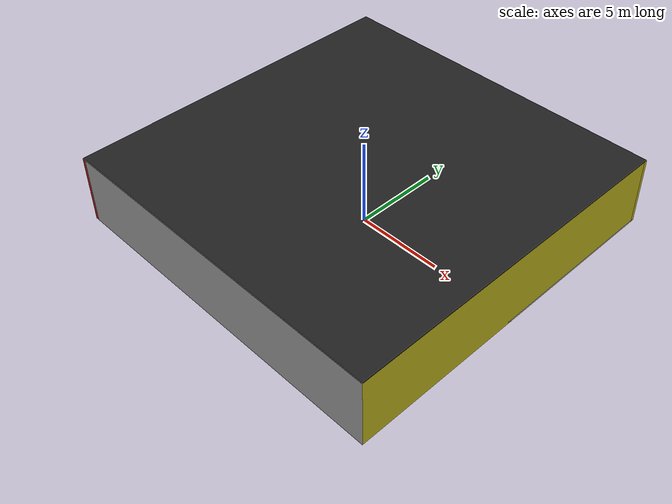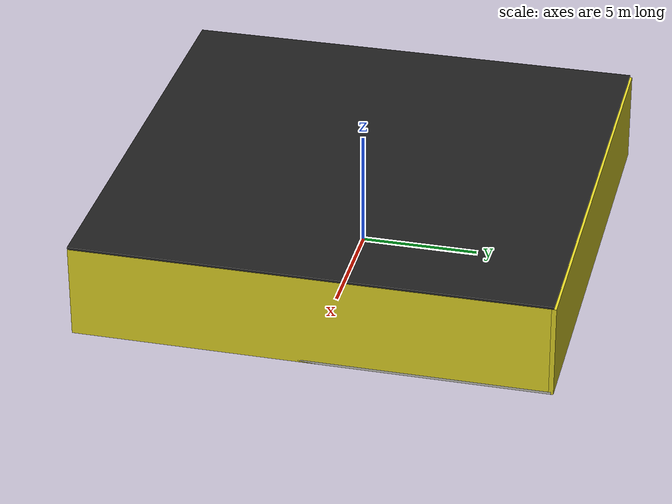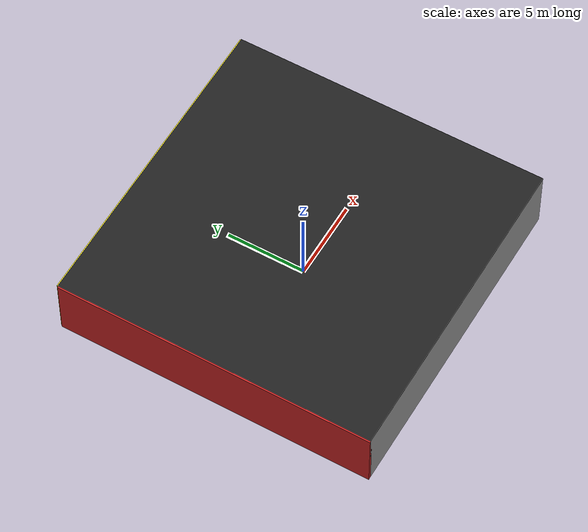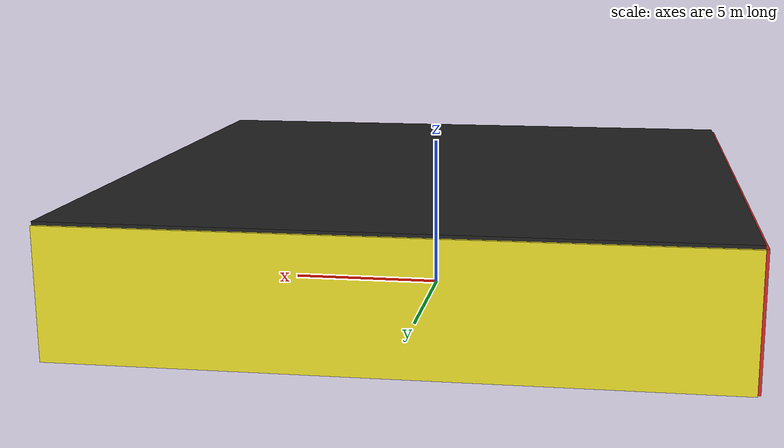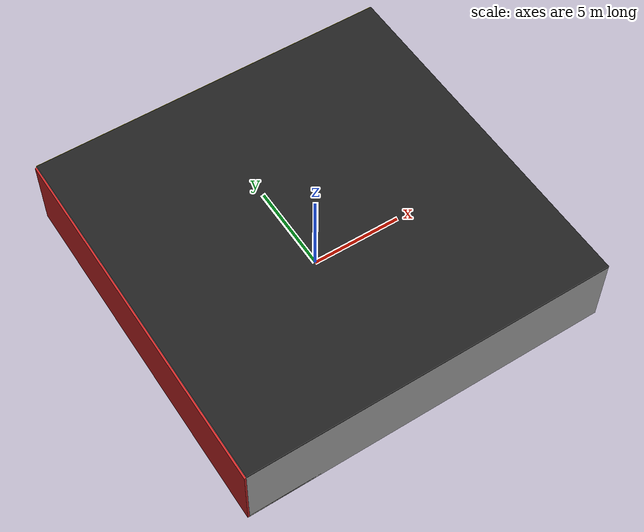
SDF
<sdf version="1.4">
 <world name="default">
  <physics type="ode">
   <max_step_size>0.001</max_step_size>
   <real_time_factor>1</real_time_factor>
   <real_time_update_rate>1000</real_time_update_rate>
   <gravity>0 0 -9.8</gravity>
  </physics>
  <scene><ambient>0.4 0.4 0.4 1</ambient><background>0.7 0.7 0.7 1</background><shadows>1</shadows></scene>
  <model name="Surrounding">
   <static>1</static>
   <link name="Ceiling">
    <collision name="Ceiling_Collision"><geometry><box><size>20 20 0.1</size></box></geometry></collision>
    <visual name="Ceiling_Visual">
     <geometry><box><size>20 20 0.1</size></box></geometry>
     <material>
      <script><uri>file://media/materials/scripts/gazebo.material</uri><name>Gazebo/Black</name></script>
     </material>
    </visual>
    <pose>0 0 4.05 0 0 0</pose>
   </link>
   <link name="Wall_South">
    <collision name="Wall_South_Collision">
     <geometry><box><size>20 0 4</size></box></geometry>
     <pose>0 0 2 0 -0 0</pose>
    </collision>
    <visual name="Wall_South_Visual">
     <pose>0 0 2 0 -0 0</pose>
     <geometry><box><size>20 0 4</size></box></geometry>
     <material>
      <script><uri>file://media/materials/scripts/gazebo.material</uri><name>Gazebo/CloudySky</name></script>
     </material>
    </visual>
    <velocity_decay><linear>0</linear><angular>0</angular></velocity_decay>
    <pose>0 -10 0 0 -0 0</pose>
   </link>
   <link name="Wall_East">
    <collision name="Wall_21_Collision">
     <geometry><box><size>20 0 4</size></box></geometry>
     <pose>0 0 2 0 -0 0</pose>
    </collision>
    <visual name="Wall_21_Visual">
     <pose>0 0 2 0 -0 0</pose>
     <geometry><box><size>20 0 4</size></box></geometry>
     <material>
      <script><uri>file://media/materials/scripts/gazebo.material</uri><name>Gazebo/Yellow</name></script>
     </material>
    </visual>
    <velocity_decay><linear>0</linear><angular>0</angular></velocity_decay>
    <pose>10 0 0 0 -0 1.5708</pose>
   </link>
   <link name="Wall_North">
    <collision name="Wall_22_Collision">
     <geometry><box><size>20 0.2 4</size></box></geometry>
     <pose>0 0 2 0 -0 0</pose>
    </collision>
    <visual name="Wall_22_Visual">
     <pose>0 0 2 0 -0 0</pose>
     <geometry><box><size>20 0.2 4</size></box></geometry>
     <material>
      <script><uri>file://media/materials/scripts/gazebo.material</uri><name>Gazebo/YellowGlow</name></script>
     </material>
    </visual>
    <velocity_decay><linear>0</linear><angular>0</angular></velocity_decay>
    <pose>0 10 0 0 -0 0</pose>
   </link>
   <link name="Wall_West">
    <collision name="Wall_23_Collision">
     <geometry><box><size>20 0.2 4</size></box></geometry>
     <pose>0 0 2 0 -0 0</pose>
    </collision>
    <visual name="Wall_23_Visual">
     <pose>0 0 2 0 -0 0</pose>
     <geometry><box><size>20 0.2 4</size></box></geometry>
     <material>
      <script><uri>file://media/materials/scripts/gazebo.material</uri><name>Gazebo/RedBright</name></script>
     </material>
    </visual>
    <velocity_decay><linear>0</linear><angular>0</angular></velocity_decay>
    <pose>-10 0 0 0 0 -1.5708</pose>
   </link>
   <link name="Ground_link">
    <collision name="collision">
     <pose>0 0 .05 0 -0 0</pose>
     <geometry><box><size>20 20 0.1</size></box></geometry>
    </collision>
    <visual name="visual">
     <pose>0 0 .05 0 -0 0</pose>
     <geometry><box><size>20 20 0.1</size></box></geometry>
     <material>
      <script><uri>file://media/materials/scripts/gazebo.material</uri><name>Gazebo/PaintedWall</name></script>
     </material>
    </visual>
   </link>
   <static>1</static>
  </model>
  <spherical_coordinates>
   <surface_model>EARTH_WGS84</surface_model>
   <latitude_deg>0</latitude_deg>
   <longitude_deg>0</longitude_deg>
   <elevation>0</elevation>
   <heading_deg>0</heading_deg>
  </spherical_coordinates>
  <light name="lightball_0" type="diffuse">
   <diffuse>0.8 0.8 0.8 1</diffuse>
   <specular>0.2 0.2 0.2 1</specular>
   <attenuation>
    <range>100</range>
    <constant>0.7</constant>
    <linear>0.01</linear>
    <quadratic>0.001</quadratic>
   </attenuation>
   <direction>-0.5 0.1 -0.9</direction>
   <pose>6.54500980701 -5.68002500514 0.539513729938 0 0 0</pose>
  </light>
  <light name="lightball_1" type="diffuse">
   <diffuse>0.8 0.8 0.8 1</diffuse>
   <specular>0.2 0.2 0.2 1</specular>
   <attenuation>
    <range>100</range>
    <constant>0.7</constant>
    <linear>0.01</linear>
    <quadratic>0.001</quadratic>
   </attenuation>
   <direction>-0.5 0.1 -0.9</direction>
   <pose>-4.16543261119 -4.33138146172 3.68240763202 0 0 0</pose>
  </light>
  <light name="lightball_2" type="diffuse">
   <diffuse>0.8 0.8 0.8 1</diffuse>
   <specular>0.2 0.2 0.2 1</specular>
   <attenuation>
    <range>100</range>
    <constant>0.7</constant>
    <linear>0.01</linear>
    <quadratic>0.001</quadratic>
   </attenuation>
   <direction>-0.5 0.1 -0.9</direction>
   <pose>9.56260281658 -2.98561658876 2.55068515723 0 0 0</pose>
  </light>
  <light name="lightball_3" type="diffuse">
   <diffuse>0.8 0.8 0.8 1</diffuse>
   <specular>0.2 0.2 0.2 1</specular>
   <attenuation>
    <range>100</range>
    <constant>0.7</constant>
    <linear>0.01</linear>
    <quadratic>0.001</quadratic>
   </attenuation>
   <direction>-0.5 0.1 -0.9</direction>
   <pose>-6.7567940091 3.0663536697 2.49005639264 0 0 0</pose>
  </light>
  <light name="lightball_4" type="diffuse">
   <diffuse>0.8 0.8 0.8 1</diffuse>
   <specular>0.2 0.2 0.2 1</specular>
   <attenuation>
    <range>100</range>
    <constant>0.7</constant>
    <linear>0.01</linear>
    <quadratic>0.001</quadratic>
   </attenuation>
   <direction>-0.5 0.1 -0.9</direction>
   <pose>-1.58657636507 -4.69869178792 1.17816773713 0 0 0</pose>
  </light>
  <light name="lightball_5" type="diffuse">
   <diffuse>0.8 0.8 0.8 1</diffuse>
   <specular>0.2 0.2 0.2 1</specular>
   <attenuation>
    <range>100</range>
    <constant>0.7</constant>
    <linear>0.01</linear>
    <quadratic>0.001</quadratic>
   </attenuation>
   <direction>-0.5 0.1 -0.9</direction>
   <pose>-4.64443246156 7.89985970977 1.84496874622 0 0 0</pose>
  </light>
  <light name="lightball_6" type="diffuse">
   <diffuse>0.8 0.8 0.8 1</diffuse>
   <specular>0.2 0.2 0.2 1</specular>
   <attenuation>
    <range>100</range>
    <constant>0.7</constant>
    <linear>0.01</linear>
    <quadratic>0.001</quadratic>
   </attenuation>
   <direction>-0.5 0.1 -0.9</direction>
   <pose>0.898721623014 5.75623782489 2.55741040208 0 0 0</pose>
  </light>
  <light name="lightball_7" type="diffuse">
   <diffuse>0.8 0.8 0.8 1</diffuse>
   <specular>0.2 0.2 0.2 1</specular>
   <attenuation>
    <range>100</range>
    <constant>0.7</constant>
    <linear>0.01</linear>
    <quadratic>0.001</quadratic>
   </attenuation>
   <direction>-0.5 0.1 -0.9</direction>
   <pose>-0.651999854331 9.9949686436 0.991477148179 0 0 0</pose>
  </light>
  <light name="lightball_8" type="diffuse">
   <diffuse>0.8 0.8 0.8 1</diffuse>
   <specular>0.2 0.2 0.2 1</specular>
   <attenuation>
    <range>100</range>
    <constant>0.7</constant>
    <linear>0.01</linear>
    <quadratic>0.001</quadratic>
   </attenuation>
   <direction>-0.5 0.1 -0.9</direction>
   <pose>-6.72874251386 -9.10633338174 0.784951174955 0 0 0</pose>
  </light>
  <light name="lightball_9" type="diffuse">
   <diffuse>0.8 0.8 0.8 1</diffuse>
   <specular>0.2 0.2 0.2 1</specular>
   <attenuation>
    <range>100</range>
    <constant>0.7</constant>
    <linear>0.01</linear>
    <quadratic>0.001</quadratic>
   </attenuation>
   <direction>-0.5 0.1 -0.9</direction>
   <pose>-5.98505777147 -5.27036749405 3.70924110632 0 0 0</pose>
  </light>
  <light name="lightball_10" type="diffuse">
   <diffuse>0.8 0.8 0.8 1</diffuse>
   <specular>0.2 0.2 0.2 1</specular>
   <attenuation>
    <range>100</range>
    <constant>0.7</constant>
    <linear>0.01</linear>
    <quadratic>0.001</quadratic>
   </attenuation>
   <direction>-0.5 0.1 -0.9</direction>
   <pose>-4.74416313317 -3.73205048844 2.91880550202 0 0 0</pose>
  </light>
  <light name="lightball_11" type="diffuse">
   <diffuse>0.8 0.8 0.8 1</diffuse>
   <specular>0.2 0.2 0.2 1</specular>
   <attenuation>
    <range>100</range>
    <constant>0.7</constant>
    <linear>0.01</linear>
    <quadratic>0.001</quadratic>
   </attenuation>
   <direction>-0.5 0.1 -0.9</direction>
   <pose>-6.53211106142 -6.59770972426 2.96269598969 0 0 0</pose>
  </light>
  <include><uri>model://cabinet</uri><pose>-1.87816091611 -4.55841153299 0 0 0 1.13287802277</pose></include>
  <include>
   <uri>model://robocup_3Dsim_goal</uri>
   <pose>1.78235217648 -1.96626337409 0 0 0 0.0367518549464</pose>
  </include>
  <include>
   <uri>model://textured_shapes</uri>
   <pose>0.960671044867 2.04905269838 0 0 0 2.88838759682</pose>
  </include>
  <include>
   <uri>model://robocup_3Dsim_goal</uri>
   <pose>4.60030195941 -6.90970755645 0 0 0 1.00744657296</pose>
  </include>
 </world>
</sdf>

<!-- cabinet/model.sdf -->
<sdf version="1.5">
  <model name="cabinet">
    <static>true</static>
    <link name="cabinet_bottom_plate">
      <inertial>
        <pose>0 0 -1 0 0 0</pose>
        <inertia>
          <ixx>2.050000</ixx>
          <ixy>0</ixy>
          <ixz>0</ixz>
          <iyy>2.050000</iyy>
          <iyz>0</iyz>
          <izz>2.050000</izz>
        </inertia>
        <mass>25.000000</mass>
      </inertial>
      <collision name="cabinet_bottom_plate_geom">
        <pose>0 0 0.010000 0 0 0</pose>
        <geometry>
          <box>
            <size>0.450000 0.450000 0.020000</size>
          </box>
        </geometry>
      </collision>
      <visual name="cabinet_bottom_plate_geom_visual">
        <pose>0 0 0.010000 0 0 0</pose>
        <geometry>
          <box>
            <size>0.450000 0.450000 0.020000</size>
          </box>
        </geometry>
        <material>
          <script>
            <uri>model://media/materials/scripts/gazebo.material</uri>
            <name>Gazebo/Wood</name>
          </script>
        </material>
      </visual>
      <collision name="cabinet_bottom_plate_geom_cabinet_back_plate">
        <pose>0.235000 0 0.510000 0 0 0</pose>
        <geometry>
          <box>
            <size>0.020000 0.450000 1.020000</size>
          </box>
        </geometry>
      </collision>
      <visual name="cabinet_bottom_plate_geom_cabinet_back_plate_visual">
        <pose>0.235000 0 0.510000 0 0 0</pose>
        <geometry>
          <box>
            <size>0.020000 0.450000 1.020000</size>
          </box>
        </geometry>
        <material>
          <script>
            <uri>model://media/materials/scripts/gazebo.material</uri>
            <name>Gazebo/Wood</name>
          </script>
        </material>
      </visual>
      <collision name="cabinet_bottom_plate_geom_cabinet_left_plate">
        <pose>0 0.235000 0.510000 0 0 0</pose>
        <geometry>
          <box>
            <size>0.450000 0.020000 1.020000</size>
          </box>
        </geometry>
      </collision>
      <visual name="cabinet_bottom_plate_geom_cabinet_left_plate_visual">
        <pose>0 0.235000 0.510000 0 0 0</pose>
        <geometry>
          <box>
            <size>0.450000 0.020000 1.020000</size>
          </box>
        </geometry>
        <material>
          <script>
            <uri>model://media/materials/scripts/gazebo.material</uri>
            <name>Gazebo/Wood</name>
          </script>
        </material>
      </visual>
      <collision name="cabinet_bottom_plate_geom_cabinet_middle_plate">
        <pose>0 0 0.510000 0 0 0</pose>
        <geometry>
          <box>
            <size>0.450000 0.450000 0.020000</size>
          </box>
        </geometry>
      </collision>
      <visual name="cabinet_bottom_plate_geom_cabinet_middle_plate_visual">
        <pose>0 0 0.510000 0 0 0</pose>
        <geometry>
          <box>
            <size>0.450000 0.450000 0.020000</size>
          </box>
        </geometry>
        <material>
          <script>
            <uri>model://media/materials/scripts/gazebo.material</uri>
            <name>Gazebo/Wood</name>
          </script>
        </material>
      </visual>
      <collision name="cabinet_bottom_plate_geom_cabinet_right_plate">
        <pose>0 -0.235000 0.510000 0 0 0</pose>
        <geometry>
          <box>
            <size>0.450000 0.020000 1.020000</size>
          </box>
        </geometry>
      </collision>
      <visual name="cabinet_bottom_plate_geom_cabinet_right_plate_visual">
        <pose>0 -0.235000 0.510000 0 0 0</pose>
        <geometry>
          <box>
            <size>0.450000 0.020000 1.020000</size>
          </box>
        </geometry>
        <material>
          <script>
            <uri>model://media/materials/scripts/gazebo.material</uri>
            <name>Gazebo/Wood</name>
          </script>
        </material>
      </visual>
      <collision name="cabinet_bottom_plate_geom_cabinet_top_plate">
        <pose>0 0 1.010000 0 0 0</pose>
        <geometry>
          <box>
            <size>0.450000 0.450000 0.020000</size>
          </box>
        </geometry>
      </collision>
      <visual name="cabinet_bottom_plate_geom_cabinet_top_plate_visual">
        <pose>0 0 1.010000 0 0 0</pose>
        <geometry>
          <box>
            <size>0.450000 0.450000 0.020000</size>
          </box>
        </geometry>
        <material>
          <script>
            <uri>model://media/materials/scripts/gazebo.material</uri>
            <name>Gazebo/Wood</name>
          </script>
        </material>
      </visual>
    </link>
  </model>
</sdf>

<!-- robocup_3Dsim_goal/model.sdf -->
<sdf version="1.5">
  <model name="robocup_3d_goal">
    <static>true</static>
    <link name="left_post">
      <pose>0 1.05 0.45 0 0 0</pose>
      <collision name="collision">
        <geometry>
          <cylinder>
            <radius>0.05</radius>
            <length>0.9</length>
          </cylinder>
        </geometry>
      </collision>
      <visual name="visual">
        <geometry>
          <cylinder>
            <radius>0.05</radius>
            <length>0.9</length>
          </cylinder>
        </geometry>
        <material>
          <script>
            <uri>file://media/materials/scripts/gazebo.material</uri>
            <name>Gazebo/ZincYellow</name>
          </script>
        </material>
      </visual>
    </link>
    <link name="left_support_horiz_lower">
      <pose>0.30 1.05 0.01 0 0 0</pose>
      <collision name="collision">
        <geometry>
          <box>
            <size>0.50 0.02 0.02</size>
          </box>
        </geometry>
      </collision>
      <visual name="visual">
        <geometry>
          <box>
            <size>0.50 0.02 0.02</size>
          </box>
        </geometry>
        <material>
          <script>
            <uri>file://media/materials/scripts/gazebo.material</uri>
            <name>Gazebo/White</name>
          </script>
        </material>
      </visual>
    </link>
    <link name="left_support_horiz_upper">
      <pose>0.30 1.05 0.79 0 0 0</pose>
      <collision name="collision">
        <geometry>
          <box>
            <size>0.50 0.02 0.02</size>
          </box>
        </geometry>
      </collision>
      <visual name="visual">
        <geometry>
          <box>
            <size>0.50 0.02 0.02</size>
          </box>
        </geometry>
        <material>
          <script>
            <uri>file://media/materials/scripts/gazebo.material</uri>
            <name>Gazebo/White</name>
          </script>
        </material>
      </visual>
    </link>
    <link name="left_support_vertical">
      <pose>0.56 1.05 0.4 0 1.5708 0</pose>
      <collision name="collision">
        <geometry>
          <box>
            <size>0.80 0.02 0.02</size>
          </box>
        </geometry>
      </collision>
      <visual name="visual">
        <geometry>
          <box>
            <size>0.80 0.02 0.02</size>
          </box>
        </geometry>
        <material>
          <script>
            <uri>file://media/materials/scripts/gazebo.material</uri>
            <name>Gazebo/White</name>
          </script>
        </material>
      </visual>
    </link>
    <link name="right_support_horiz_lower">
      <pose>0.30 -1.05 0.01 0 0 0</pose>
      <collision name="collision">
        <geometry>
          <box>
            <size>0.50 0.02 0.02</size>
          </box>
        </geometry>
      </collision>
      <visual name="visual">
        <geometry>
          <box>
            <size>0.50 0.02 0.02</size>
          </box>
        </geometry>
        <material>
          <script>
            <uri>file://media/materials/scripts/gazebo.material</uri>
            <name>Gazebo/White</name>
          </script>
        </material>
      </visual>
    </link>
    <link name="right_support_horiz_upper">
      <pose>0.30 -1.05 0.79 0 0 0</pose>
      <collision name="collision">
        <geometry>
          <box>
            <size>0.50 0.02 0.02</size>
          </box>
        </geometry>
      </collision>
      <visual name="visual">
        <geometry>
          <box>
            <size>0.50 0.02 0.02</size>
          </box>
        </geometry>
        <material>
          <script>
            <uri>file://media/materials/scripts/gazebo.material</uri>
            <name>Gazebo/White</name>
          </script>
        </material>
      </visual>
    </link>
    <link name="right_support_vertical">
      <pose>0.56 -1.05 0.4 0 1.5708 0</pose>
      <collision name="collision">
        <geometry>
          <box>
            <size>0.80 0.02 0.02</size>
          </box>
        </geometry>
      </collision>
      <visual name="visual">
        <geometry>
          <box>
            <size>0.80 0.02 0.02</size>
          </box>
        </geometry>
        <material>
          <script>
            <uri>file://media/materials/scripts/gazebo.material</uri>
            <name>Gazebo/White</name>
          </script>
        </material>
      </visual>
    </link>
    <link name="center_support_horiz_lower">
      <pose>0.56 0 0.01 0 1.5708 0</pose>
      <collision name="collision">
        <geometry>
          <box>
            <size>0.02 2.08 0.02</size>
          </box>
        </geometry>
      </collision>
      <visual name="visual">
        <geometry>
          <box>
            <size>0.02 2.08 0.02</size>
          </box>
        </geometry>
        <material>
          <script>
            <uri>file://media/materials/scripts/gazebo.material</uri>
            <name>Gazebo/White</name>
          </script>
        </material>
      </visual>
    </link>
    <link name="center_support_horiz_upper">
      <pose>0.56 0 0.79 0 1.5708 0</pose>
      <collision name="collision">
        <geometry>
          <box>
            <size>0.02 2.08 0.02</size>
          </box>
        </geometry>
      </collision>
      <visual name="visual">
        <geometry>
          <box>
            <size>0.02 2.08 0.02</size>
          </box>
        </geometry>
        <material>
          <script>
            <uri>file://media/materials/scripts/gazebo.material</uri>
            <name>Gazebo/White</name>
          </script>
        </material>
      </visual>
    </link>
    <link name="right_post">
      <pose>0 -1.05 0.45 0 0 0</pose>
      <collision name="collision">
        <geometry>
          <cylinder>
            <radius>0.05</radius>
            <length>0.9</length>
          </cylinder>
        </geometry>
      </collision>
      <visual name="visual">
        <geometry>
          <cylinder>
            <radius>0.05</radius>
            <length>0.9</length>
          </cylinder>
        </geometry>
        <material>
          <script>
            <uri>file://media/materials/scripts/gazebo.material</uri>
            <name>Gazebo/ZincYellow</name>
          </script>
        </material>
      </visual>
    </link>
    <link name="crossbar">
      <pose>0 0 0.85 1.57 1.57 0</pose>
      <collision name="collision">
        <geometry>
          <cylinder>
            <radius>0.05</radius>
            <length>2.0</length>
          </cylinder>
        </geometry>
      </collision>
      <visual name="visual">
        <geometry>
          <cylinder>
            <radius>0.05</radius>
            <length>2.0</length>
          </cylinder>
        </geometry>
        <material>
          <script>
            <uri>file://media/materials/scripts/gazebo.material</uri>
            <name>Gazebo/ZincYellow</name>
          </script>
        </material>
      </visual>
    </link>
    <link name="center_net">
      <pose>0.56 0 0.40 0 0 0</pose>
      <collision name="collision">
        <geometry>
          <box>
            <size>0.01 2.1 0.80</size>
          </box>
        </geometry>
      </collision>
      <visual name="visual">
        <geometry>
          <box>
            <size>0.01 2.1 0.80</size>
          </box>
        </geometry>
        <material>
          <script>
            <uri>model://../model_source/models/robocup09_spl_field/materials/scripts/</uri>
            <uri>model://../model_source/models/robocup09_spl_field/materials/textures/</uri>
            <name>RoboCup/Net</name>
          </script>
        </material>
      </visual>
    </link>
    <link name="left_net">
      <pose>0.30 1.05 0.40 0 0 0</pose>
      <collision name="collision">
        <geometry>
          <box>
            <size>0.50 0.01 0.76</size>
          </box>
        </geometry>
      </collision>
      <visual name="visual">
        <geometry>
          <box>
            <size>0.50 0.01 0.76</size>
          </box>
        </geometry>
        <material>
          <script>
            <uri>model://../model_source/models/robocup09_spl_field/materials/scripts/</uri>
            <uri>model://../model_source/models/robocup09_spl_field/materials/textures/</uri>
            <name>RoboCup/Net</name>
          </script>
        </material>
      </visual>
    </link>
    <link name="right_net">
      <pose>0.30 -1.05 0.40 0 0 0</pose>
      <collision name="collision">
        <geometry>
          <box>
            <size>0.50 0.01 0.76</size>
          </box>
        </geometry>
      </collision>
      <visual name="visual">
        <geometry>
          <box>
            <size>0.50 0.01 0.76</size>
          </box>
        </geometry>
        <material>
          <script>
            <uri>model://../model_source/models/robocup09_spl_field/materials/scripts/</uri>
            <uri>model://../model_source/models/robocup09_spl_field/materials/textures/</uri>
            <name>RoboCup/Net</name>
          </script>
        </material>
      </visual>
    </link>
  </model>
</sdf>

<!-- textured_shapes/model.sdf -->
<sdf version="1.6">
  <model name="textured_shapes">
    <pose>0 0 0.5 0 0 0</pose>
    <link name="box">
      <pose>0 -1.5 0 0 0 0</pose>
      <collision name="collision">
        <geometry>
          <box>
            <size>1 1 1</size>
          </box>
        </geometry>
      </collision>
      <visual name="visual">
        <geometry>
          <box>
            <size>1 1 1</size>
          </box>
        </geometry>
        <material>
          <script>
            <uri>model://../model_source/models/textured_shapes/materials/scripts</uri>
            <uri>model://../model_source/models/textured_shapes/materials/textures</uri>
            <name>TexturedShape/Squares</name>
          </script>
        </material>
      </visual>
    </link>
    <link name="sphere">
      <collision name="collision">
        <geometry>
          <sphere>
            <radius>0.5</radius>
          </sphere>
        </geometry>
      </collision>
      <visual name="visual">
        <geometry>
          <sphere>
            <radius>0.5</radius>
          </sphere>
        </geometry>
        <material>
          <script>
            <uri>model://../model_source/models/textured_shapes/materials/scripts</uri>
            <uri>model://../model_source/models/textured_shapes/materials/textures</uri>
            <name>TexturedShape/Squares</name>
          </script>
        </material>
      </visual>
    </link>
    <link name="cylinder">
      <pose>0 1.5 0 0 0 0</pose>
      <collision name="collision">
        <geometry>
          <cylinder>
            <radius>0.5</radius>
            <length>1</length>
          </cylinder>
        </geometry>
      </collision>
      <visual name="visual">
        <geometry>
          <cylinder>
            <radius>0.5</radius>
            <length>1</length>
          </cylinder>
        </geometry>
        <material>
          <script>
            <uri>model://../model_source/models/textured_shapes/materials/scripts</uri>
            <uri>model://../model_source/models/textured_shapes/materials/textures</uri>
            <name>TexturedShape/Squares</name>
          </script>
        </material>
      </visual>
    </link>
  </model>
</sdf>
